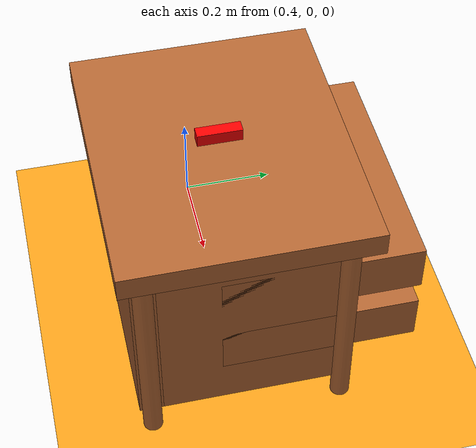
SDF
<sdf version="1.6">
 <world name="table_world">
  <physics name="1ms" type="dart">
   <max_step_size>0.001</max_step_size>
   <real_time_factor>1.0</real_time_factor>
  </physics>
  <model name="ground_plane">
   <static>true</static>
   <link name="link">
    <collision name="collision">
     <geometry><plane><normal>0 0 1</normal><size>100 100</size></plane></geometry>
    </collision>
    <visual name="visual">
     <geometry><plane><normal>0 0 1</normal><size>100 100</size></plane></geometry>
     <material>
      <ambient>0.440506 0.236970 0.689023 0.970577</ambient>
      <diffuse>0.973346 0.623336 0.105298 0.898041</diffuse>
      <specular>0.165998 0.589134 0.519008 0.893618</specular>
     </material>
    </visual>
   </link>
  </model>
  <include>
   <uri>file:///home/ubuntu/ros2_ws/src/table_drawer/table_with_drawers.sdf</uri>
   <pose>0.8 0 0 0 0 0</pose>
  </include>
  <model name="target_cube">
   <pose>0.8 0.0 0.55 0 0 0</pose>
   <link name="link">
    <inertial>
     <mass>0.1</mass>
     <inertia>
      <ixx>0.000083</ixx>
      <ixy>0.0</ixy>
      <ixz>0.0</ixz>
      <iyy>0.000083</iyy>
      <iyz>0.0</iyz>
      <izz>0.000083</izz>
     </inertia>
    </inertial>
    <collision name="collision"><geometry><box><size>0.02505 0.090 0.025</size></box></geometry></collision>
    <visual name="visual">
     <geometry><box><size>0.02505 0.090 0.025</size></box></geometry>
     <material><ambient>1 0 0 1</ambient><diffuse>1 0 0 1</diffuse><specular>1 0 0 1</specular></material>
    </visual>
   </link>
   <static>false</static>
  </model>
 </world>
</sdf>

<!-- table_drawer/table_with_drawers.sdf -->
<sdf version="1.6">
  <model name="table_with_drawers">
    <!-- Table top -->
    <link name="table_top">
      <pose>0 0 0.5 0 0 0</pose>
      <visual name="table_visual">
        <geometry>
          <box>
            <size>0.6 0.5 0.05</size>
          </box>
        </geometry>
        <material>
          <ambient>0.4 0.2 0.1 1</ambient>
          <diffuse>0.7 0.4 0.2 1</diffuse>
          <specular>0.1 0.1 0.1 1</specular>
        </material>
      </visual>
      <collision name="table_collision">
        <geometry>
          <box>
            <size>0.6 0.5 0.05</size>
          </box>
        </geometry>
      </collision>
    </link>

    <!-- Drawer 1 -->
    <link name="drawer_1">
      <pose>0 0.15 0.35 0 0 0</pose>  <!-- Moved forward (positive Y) -->
      <visual name="drawer_1_visual">
        <geometry>
          <box>
            <size>0.5 0.4 0.1</size>
          </box>
        </geometry>
        <material>
          <ambient>0.4 0.2 0.1 1</ambient>
          <diffuse>0.7 0.4 0.2 1</diffuse>
          <specular>0.1 0.1 0.1 1</specular>
        </material>
      </visual>
      <collision name="drawer_1_collision">
        <geometry>
          <box>
            <size>0.5 0.4 0.1</size>
          </box>
        </geometry>
      </collision>
    </link>

    <!-- Drawer 2 -->
    <link name="drawer_2">
      <pose>0 0.15 0.2 0 0 0</pose>  <!-- Moved forward (positive Y) -->
      <visual name="drawer_2_visual">
        <geometry>
          <box>
            <size>0.5 0.4 0.1</size>
          </box>
        </geometry>
        <material>
          <ambient>0.4 0.2 0.1 1</ambient>
          <diffuse>0.7 0.4 0.2 1</diffuse>
          <specular>0.1 0.1 0.1 1</specular>
        </material>
      </visual>
      <collision name="drawer_2_collision">
        <geometry>
          <box>
            <size>0.5 0.4 0.1</size>
          </box>
        </geometry>
      </collision>
    </link>

    <!-- Table back panel -->
    <link name="back_panel">
      <pose>0 -0.2 0.275 0 0 0</pose>
      <visual name="back_panel_visual">
        <geometry>
          <box>
            <size>0.5 0.05 0.45</size>
          </box>
        </geometry>
        <material>
          <ambient>0.4 0.2 0.1 1</ambient>
          <diffuse>0.7 0.4 0.2 1</diffuse>
          <specular>0.1 0.1 0.1 1</specular>
        </material>
      </visual>
      <collision name="back_panel_collision">
        <geometry>
          <box>
            <size>0.5 0.05 0.45</size>
          </box>
        </geometry>
      </collision>
    </link>

    <!-- Table side panels -->
    <link name="left_panel">
      <pose>0.225 0 0.275 0 0 0</pose>
      <visual name="left_panel_visual">
        <geometry>
          <box>
            <size>0.05 0.4 0.45</size>
          </box>
        </geometry>
        <material>
          <ambient>0.4 0.2 0.1 1</ambient>
          <diffuse>0.7 0.4 0.2 1</diffuse>
          <specular>0.1 0.1 0.1 1</specular>
        </material>
      </visual>
      <collision name="left_panel_collision">
        <geometry>
          <box>
            <size>0.05 0.4 0.45</size>
          </box>
        </geometry>
      </collision>
    </link>

    <link name="right_panel">
      <pose>-0.225 0 0.275 0 0 0</pose>
      <visual name="right_panel_visual">
        <geometry>
          <box>
            <size>0.05 0.4 0.45</size>
          </box>
        </geometry>
        <material>
          <ambient>0.4 0.2 0.1 1</ambient>
          <diffuse>0.7 0.4 0.2 1</diffuse>
          <specular>0.1 0.1 0.1 1</specular>
        </material>
      </visual>
      <collision name="right_panel_collision">
        <geometry>
          <box>
            <size>0.05 0.4 0.45</size>
          </box>
        </geometry>
      </collision>
    </link>

    <!-- Table legs -->
    <link name="leg1">
      <pose>0.25 0.2 0.25 0 0 0</pose>
      <visual name="leg1_visual">
        <geometry>
          <cylinder>
            <radius>0.02</radius>
            <length>0.5</length>
          </cylinder>
        </geometry>
        <material>
          <ambient>0.4 0.2 0.1 1</ambient>
          <diffuse>0.7 0.4 0.2 1</diffuse>
          <specular>0.1 0.1 0.1 1</specular>
        </material>
      </visual>
      <collision name="leg1_collision">
        <geometry>
          <cylinder>
            <radius>0.02</radius>
            <length>0.5</length>
          </cylinder>
        </geometry>
      </collision>
    </link>

    <link name="leg2">
      <pose>-0.25 0.2 0.25 0 0 0</pose>
      <visual name="leg2_visual">
        <geometry>
          <cylinder>
            <radius>0.02</radius>
            <length>0.5</length>
          </cylinder>
        </geometry>
        <material>
          <ambient>0.4 0.2 0.1 1</ambient>
          <diffuse>0.7 0.4 0.2 1</diffuse>
          <specular>0.1 0.1 0.1 1</specular>
        </material>
      </visual>
      <collision name="leg2_collision">
        <geometry>
          <cylinder>
            <radius>0.02</radius>
            <length>0.5</length>
          </cylinder>
        </geometry>
      </collision>
    </link>

    <link name="leg3">
      <pose>0.25 -0.2 0.25 0 0 0</pose>
      <visual name="leg3_visual">
        <geometry>
          <cylinder>
            <radius>0.02</radius>
            <length>0.5</length>
          </cylinder>
        </geometry>
        <material>
          <ambient>0.4 0.2 0.1 1</ambient>
          <diffuse>0.7 0.4 0.2 1</diffuse>
          <specular>0.1 0.1 0.1 1</specular>
        </material>
      </visual>
      <collision name="leg3_collision">
        <geometry>
          <cylinder>
            <radius>0.02</radius>
            <length>0.5</length>
          </cylinder>
        </geometry>
      </collision>
    </link>

    <link name="leg4">
      <pose>-0.25 -0.2 0.25 0 0 0</pose>
      <visual name="leg4_visual">
        <geometry>
          <cylinder>
            <radius>0.02</radius>
            <length>0.5</length>
          </cylinder>
        </geometry>
        <material>
          <ambient>0.4 0.2 0.1 1</ambient>
          <diffuse>0.7 0.4 0.2 1</diffuse>
          <specular>0.1 0.1 0.1 1</specular>
        </material>
      </visual>
      <collision name="leg4_collision">
        <geometry>
          <cylinder>
            <radius>0.02</radius>
            <length>0.5</length>
          </cylinder>
        </geometry>
      </collision>
    </link>

    <!-- 添加抽屉的滑动关节 -->
    <joint name="drawer_1_joint" type="prismatic">
      <parent>right_panel</parent>
      <child>drawer_1</child>
      <axis>
        <xyz>0 1 0</xyz>
        <limit>
          <lower>0</lower>
          <upper>0.3</upper>
          <effort>50</effort>
          <velocity>0.5</velocity>
        </limit>
      </axis>
      <pose>0 0 0 0 0 0</pose>
    </joint>

    <joint name="drawer_2_joint" type="prismatic">
      <parent>right_panel</parent>
      <child>drawer_2</child>
      <axis>
        <xyz>0 1 0</xyz>
        <limit>
          <lower>0</lower>
          <upper>0.3</upper>
          <effort>50</effort>
          <velocity>0.5</velocity>
        </limit>
      </axis>
      <pose>0 0 0 0 0 0</pose>
    </joint>

    <!-- 固定侧板到桌面 -->
    <joint name="left_panel_joint" type="fixed">
      <parent>table_top</parent>
      <child>left_panel</child>
    </joint>

    <joint name="right_panel_joint" type="fixed">
      <parent>table_top</parent>
      <child>right_panel</child>
    </joint>

    <!-- 固定后板到桌面 -->
    <joint name="back_panel_joint" type="fixed">
      <parent>table_top</parent>
      <child>back_panel</child>
    </joint>

    <!-- 固定桌腿到桌面 -->
    <joint name="leg1_joint" type="fixed">
      <parent>table_top</parent>
      <child>leg1</child>
    </joint>

    <joint name="leg2_joint" type="fixed">
      <parent>table_top</parent>
      <child>leg2</child>
    </joint>

    <joint name="leg3_joint" type="fixed">
      <parent>table_top</parent>
      <child>leg3</child>
    </joint>

    <joint name="leg4_joint" type="fixed">
      <parent>table_top</parent>
      <child>leg4</child>
    </joint>

  </model>
</sdf>
